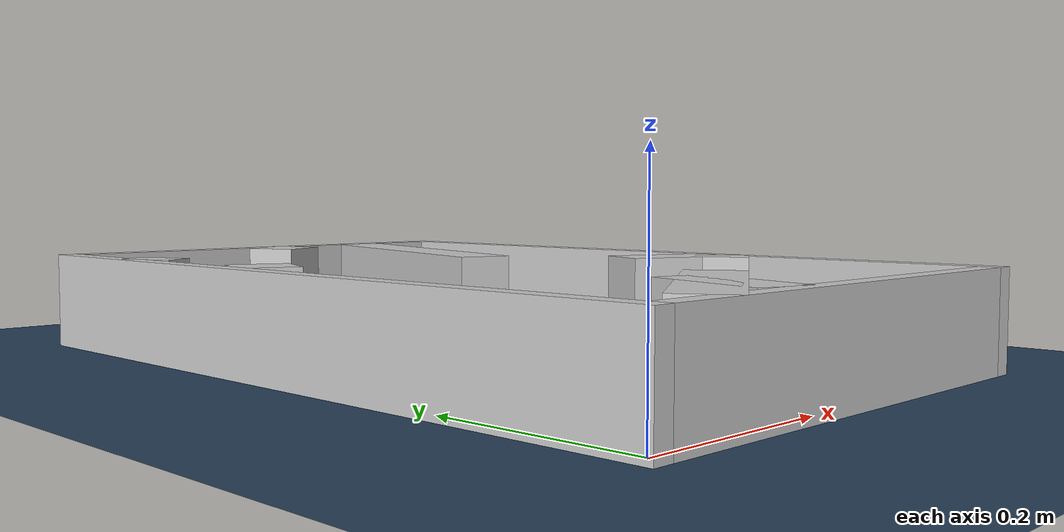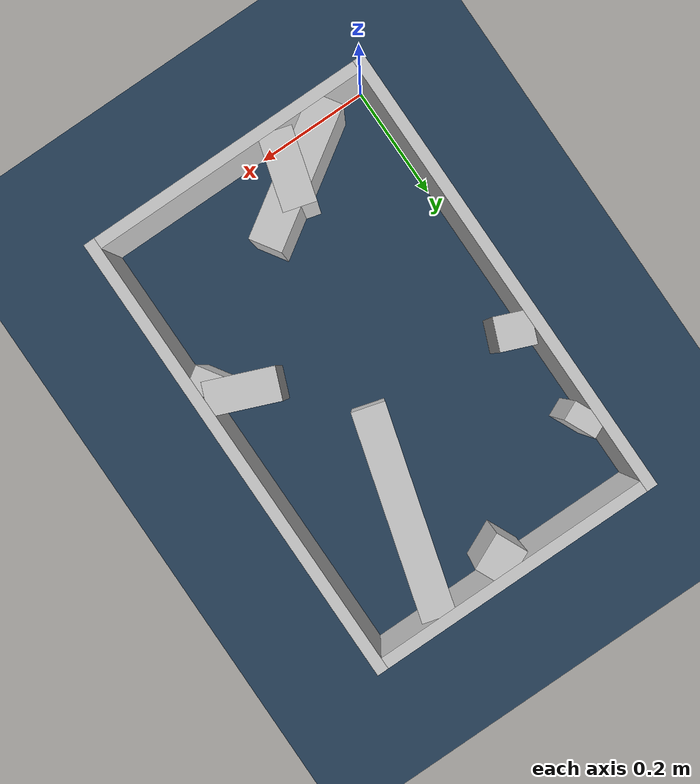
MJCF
<?xml version="1.0" ?>
<mujoco model="generated_real_template">
  <compiler angle="degree"/>
  <option timestep="0.002" integrator="implicitfast" iterations="100" cone="elliptic"/>
  <default>
    <geom density="1"/>
  </default>
  <asset>
    <texture builtin="gradient" height="3072" rgb1="0.3 0.5 0.7" rgb2="0 0 0" type="skybox" width="512"/>
    <texture builtin="checker" height="300" mark="edge" markrgb="0.8 0.8 0.8" name="groundplane" rgb1="0.2 0.3 0.4" rgb2="0.1 0.2 0.3" type="2d" width="300"/>
    <material name="groundplane" reflectance="0.2" texrepeat="5 5" texture="groundplane" texuniform="true"/>
  </asset>
  <worldbody>
    <light dir="0 0 -1" directional="true" pos="0 0 1.5"/>
    <geom name="floor" type="plane" condim="4" friction="0.5 0.005 0.001" material="groundplane" size="0 0 0.05"/>
    <body name="walls">
      <geom name="wall_boundary_left" type="box" condim="4" friction="1.0 0.005 0.0001" rgba="0.8 0.8 0.8 1" pos="-0.010000 0.387500 0.050000" euler="0 0 0.000000" size="0.010000 0.407500 0.050000"/>
      <geom name="wall_boundary_right" type="box" condim="4" friction="1.0 0.005 0.0001" rgba="0.8 0.8 0.8 1" pos="0.500000 0.387500 0.050000" euler="0 0 0.000000" size="0.010000 0.407500 0.050000"/>
      <geom name="wall_boundary_bottom" type="box" condim="4" friction="1.0 0.005 0.0001" rgba="0.8 0.8 0.8 1" pos="0.245000 -0.010000 0.050000" euler="0 0 0.000000" size="0.245000 0.010000 0.050000"/>
      <geom name="wall_boundary_top" type="box" condim="4" friction="1.0 0.005 0.0001" rgba="0.8 0.8 0.8 1" pos="0.245000 0.785000 0.050000" euler="0 0 0.000000" size="0.245000 0.010000 0.050000"/>
      <geom name="wall_inner_1_1" type="box" condim="4" friction="1.0 0.005 0.0001" rgba="0.8 0.8 0.8 1" pos="0.016005 0.647731 0.050000" euler="0 0 24.810177" size="0.017632 0.028500 0.050000"/>
      <geom name="wall_inner_1_2" type="box" condim="4" friction="1.0 0.005 0.0001" rgba="0.8 0.8 0.8 1" pos="0.248581 0.755246 0.050000" euler="0 0 24.810177" size="0.033087 0.028500 0.050000"/>
      <geom name="wall_inner_2_1" type="box" condim="4" friction="1.0 0.005 0.0001" rgba="0.8 0.8 0.8 1" pos="0.028320 0.470785 0.050000" euler="0 0 -21.815311" size="0.030505 0.028500 0.050000"/>
      <geom name="wall_inner_2_2" type="box" condim="4" friction="1.0 0.005 0.0001" rgba="0.8 0.8 0.8 1" pos="0.434663 0.308133 0.050000" euler="0 0 -21.815311" size="0.059605 0.028500 0.050000"/>
      <geom name="wall_inner_3_1" type="box" condim="4" friction="1.0 0.005 0.0001" rgba="0.8 0.8 0.8 1" pos="0.332724 0.607055 0.050000" euler="0 0 -105.668538" size="0.174427 0.028500 0.050000"/>
      <geom name="wall_inner_3_2" type="box" condim="4" friction="1.0 0.005 0.0001" rgba="0.8 0.8 0.8 1" pos="0.179477 0.060709 0.050000" euler="0 0 -105.668538" size="0.063052 0.028500 0.050000"/>
      <geom name="wall_inner_4_1" type="box" condim="4" friction="1.0 0.005 0.0001" rgba="0.8 0.8 0.8 1" pos="0.170969 0.072335 0.050000" euler="0 0 33.054506" size="0.125490 0.028500 0.050000"/>
      <geom name="wall_inner_4_2" type="box" condim="4" friction="1.0 0.005 0.0001" rgba="0.8 0.8 0.8 1" pos="0.472503 0.268561 0.050000" euler="0 0 33.054506" size="0.020876 0.028500 0.050000"/>
    </body>
  </worldbody>
</mujoco>
